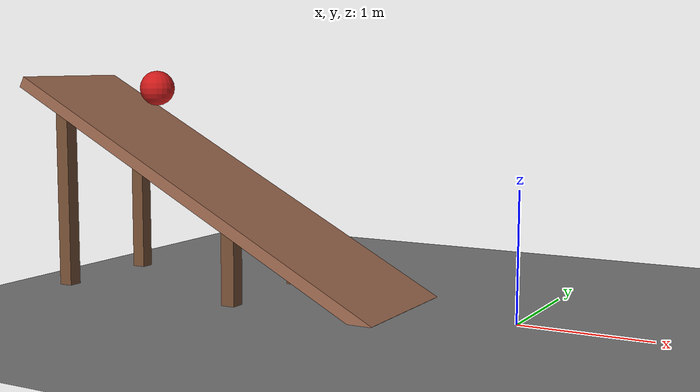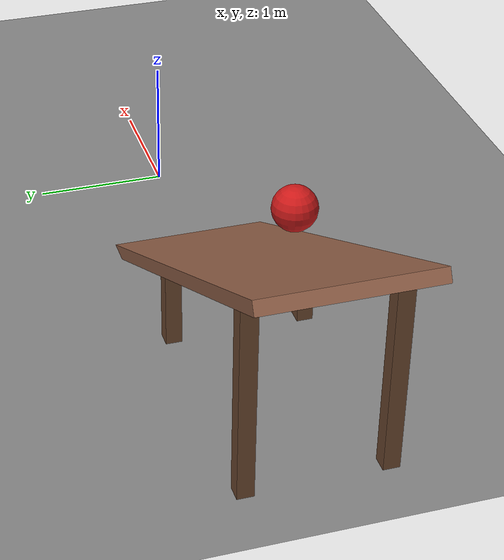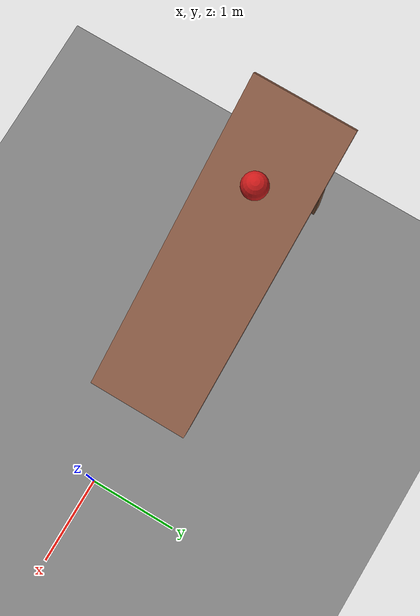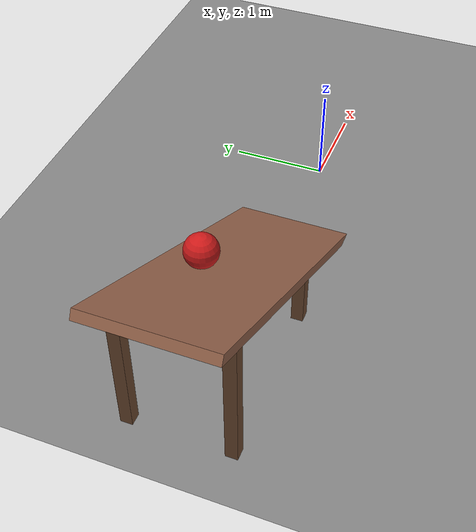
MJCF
<mujoco model="ramp_descent_high_friction">
  <option timestep="0.002" gravity="0 0 -9.81"/>
  <visual>
    <global offwidth="1280" offheight="720"/>
  </visual>

  <default>
    <geom friction="1.2 0.01 0.15" solref="0.01 1"/>
  </default>

  <worldbody>
    <light diffuse="0.8 0.8 0.8" pos="0 0 4" dir="0 0 -1"/>

    <geom name="floor" type="plane" size="6 3 0.1" pos="1.6 0 0" rgba="0.5 0.5 0.5 1"/>

    <geom name="ramp" type="box" size="1.917 0.6 0.05" pos="-2.6165 0 0.8559"
          euler="0 28 0" rgba="0.6 0.4 0.3 1"/>

    <geom name="ramp_leg_1a" type="box" size="0.06 0.06 0.7533" pos="-3.9 0.5 0.7533"
          contype="0" conaffinity="0" rgba="0.45 0.3 0.2 1"/>
    <geom name="ramp_leg_1b" type="box" size="0.06 0.06 0.7533" pos="-3.9 -0.5 0.7533"
          contype="0" conaffinity="0" rgba="0.45 0.3 0.2 1"/>
    <geom name="ramp_leg_2a" type="box" size="0.06 0.06 0.3014" pos="-2.2 0.5 0.3014"
          contype="0" conaffinity="0" rgba="0.45 0.3 0.2 1"/>
    <geom name="ramp_leg_2b" type="box" size="0.06 0.06 0.3014" pos="-2.2 -0.5 0.3014"
          contype="0" conaffinity="0" rgba="0.45 0.3 0.2 1"/>

    <body name="ball" pos="-3.3 0 1.7">
      <freejoint/>
      <geom name="ball_geom" type="sphere" size="0.15" mass="0.5" rgba="0.8 0.1 0.1 1"
            condim="6"/>
    </body>
  </worldbody>
</mujoco>
